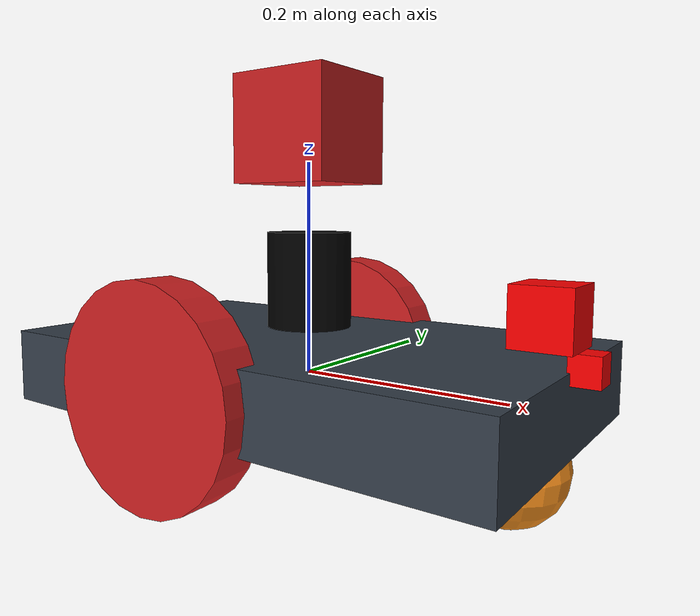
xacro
<?xml version="1.0"?>
<robot xmlns:xacro="http://www.ros.org/wiki/xacro" name="robot_xacro">
<xacro:include filename="$(find exp_assignment3)/urdf/robot.gazebo"/>

	<xacro:property name="length_wheel" value="0.04" />
	<xacro:property name="radius_wheel" value="0.1" />

	<xacro:macro name="default_inertial" params="mass">
               <inertial>
                       <mass value="${mass}" />
                       <origin rpy="0 1.5707 1.5707" xyz="0 0 0"/>
                       <inertia ixx="0.000526666666667" ixy="0" ixz="0" iyy="0.000526666666667" iyz="0" izz="0.001"/>
               </inertial>
	</xacro:macro>

    <xacro:macro name="wheel_geometry">
		<geometry>
       			<cylinder length="${length_wheel}" radius="${radius_wheel}"/>
     	</geometry>
	</xacro:macro>

  <material name="black">
    <color rgba="0.0 0.0 0.0 1.0"/>
  </material>
  <material name="blue">
    <color rgba="0.203125 0.23828125 0.28515625 1.0"/>
  </material>
  <material name="green">
    <color rgba="0.0 0.8 0.0 1.0"/>
  </material>
  <material name="grey">
    <color rgba="0.2 0.2 0.2 1.0"/>
  </material>
  <material name="orange">
    <color rgba="1.0 0.423529411765 0.0392156862745 1.0"/>
  </material>
  <material name="brown">
    <color rgba="0.870588235294 0.811764705882 0.764705882353 1.0"/>
  </material>
  <material name="red">
    <color rgba="0.80078125 0.12890625 0.1328125 1.0"/>
  </material>
  <material name="white">
    <color rgba="1.0 1.0 1.0 1.0"/>
  </material>

	  <link name="link_chassis">
    <!-- pose and inertial -->
    <pose>0 0 0.1 0 0 0</pose>
    <inertial>
      <mass value="5"/>
      <origin rpy="0 0 0" xyz="0 0 0.1"/>
      <inertia ixx="0.0395416666667" ixy="0" ixz="0" iyy="0.106208333333" iyz="0" izz="0.106208333333"/>
    </inertial>
    <!-- body -->
    <collision name="collision_chassis">
      <geometry>
        <box size="0.5 0.3 0.07"/>
      </geometry>
    </collision>
    <visual>
      <origin rpy="0 0 0" xyz="0 0 0"/>
      <geometry>
        <box size="0.5 0.3 0.07"/>
      </geometry>
      <material name="blue"/>
    </visual>
    <!-- caster front -->
    <collision name="caster_front_collision">
      <origin rpy=" 0 0 0" xyz="0.35 0 -0.05"/>
      <geometry>
        <sphere radius="0.05"/>
      </geometry>
    </collision>
    <visual name="caster_front_visual">
      <origin rpy=" 0 0 0" xyz="0.2 0 -0.05"/>
      <geometry>
        <sphere radius="0.05"/>
      </geometry>
    </visual>
  </link>

   <link name="link_right_wheel">
    <xacro:default_inertial mass="0.2"/>
    <collision name="link_right_wheel_collision">
      <origin rpy="0 1.5707 1.5707" xyz="0 0 0"/>
      <xacro:wheel_geometry />
    </collision>
    <visual name="link_right_wheel_visual">
      <origin rpy="0 1.5707 1.5707" xyz="0 0 0"/>
      <xacro:wheel_geometry />
      <material name="red"/>
    </visual>
  </link>

   <link name="link_left_wheel">
    <xacro:default_inertial mass="0.2"/>
    <collision name="link_left_wheel_collision">
      <origin rpy="0 1.5707 1.5707" xyz="0 0 0"/>
      <xacro:wheel_geometry />
    </collision>
    <visual name="link_left_wheel_visual">
      <origin rpy="0 1.5707 1.5707" xyz="0 0 0"/>
      <xacro:wheel_geometry />
      <material name="red"/>
    </visual>
  </link>

  <joint name="joint_right_wheel" type="continuous">
    <origin rpy="0 0 0" xyz="-0.05 0.15 0"/>
    <child link="link_right_wheel"/>
    <parent link="link_chassis"/>
    <axis rpy="0 0 0" xyz="0 1 0"/>
    <limit effort="10000" velocity="1000"/>
    <joint_properties damping="1.0" friction="1.0"/>
  </joint>

  <joint name="joint_left_wheel" type="continuous">
    <origin rpy="0 0 0" xyz="-0.05 -0.15 0"/>
    <child link="link_left_wheel"/>
    <parent link="link_chassis"/>
    <axis rpy="0 0 0" xyz="0 1 0"/>
    <limit effort="10000" velocity="1000"/>
    <joint_properties damping="1.0" friction="1.0"/>
  </joint>

    <link name="neck_link">
  	<inertial>
	<mass value="0.025"/>
	<origin xyz="0 0 0" rpy="0.05 0 0" />
	<inertia ixx="0.000010279" ixy="0" ixz="0" iyy="0.000010279" iyz="0" izz="0.000007225"/>
  	</inertial>
  	<collision>
  	  <origin xyz="0 0 0.08" rpy="0 0 0"/>
      <geometry>
        <cylinder radius="0.04" length="0.09"/>
      </geometry>
  	</collision>
  	<visual>
  	  <origin xyz="0 0 0.09" rpy="0 0 0"/>
      <geometry>
        <cylinder radius="0.04" length="0.09"/>
      </geometry>
      <material name="black" />
  	</visual>
  </link>

  <link name="head_link">
  	<inertial>
	<mass value="0.025"/>
	<origin xyz="0 0 0" rpy="0 0 0" />
	<inertia ixx="0.000010279" ixy="0" ixz="0" iyy="0.000010279" iyz="0" izz="0.000007225"/>
  	</inertial>
  	<collision>
  	  <origin xyz="0 0 0.18" rpy="0 0 0"/>
      <geometry>
        <box size="0.1 0.1 0.1"/>
      </geometry>
  	</collision>
  	<visual>
  	  <origin xyz="0 0 0.18" rpy="0 0 0"/>
      <geometry>
        <box size="0.1 0.1 0.1"/>
      </geometry>
      <material name="red" />
  	</visual>
  </link>

  <link name="camera_link">
	    <collision>
	      <origin xyz="0 0 0.025" rpy="0 0 0"/>
	      <geometry>
		<box size="0.05 0.05 0.05"/>
	      </geometry>
	    </collision>
	    <visual>
	      <origin xyz="0 0 0.025" rpy="0 0 0"/>
	      <geometry>
		<box size="0.05 0.05 0.05"/>
	      </geometry>
	      <material name="red">
		<color rgba="1 0 0 1"/>
	      </material>
	    </visual>
	    <inertial>
	      <mass value="1e-5" />
	      <origin xyz="0 0 0" rpy="0 0 0"/>
	      <inertia ixx="1e-6" ixy="0" ixz="0" iyy="1e-6" iyz="0" izz="1e-6" />
	    </inertial>
  </link>

  <joint name="head_joint" type="fixed">
  	<axis xyz="0 0 1"/>
  	<limit effort="1000.0" lower="-3.14" upper="3.14" velocity="0.2"/>
  	<origin rpy="0 0 0" xyz="0 0 0.05"/>
  	<parent link="neck_link"/>
  	<child link="head_link"/>
  </joint>

  <joint name="neck_joint" type="fixed">
  	<origin rpy="0 0 0" xyz="0 0 0"/>
  	<parent link="link_chassis"/>
  	<child link="neck_link"/>
  </joint>

  <joint name="camera_joint" type="fixed">
	    <axis xyz="0 1 0" />
	    <origin xyz="0.23 0 0.0" rpy="0 0 0"/>
	    <parent link="head_link"/>
	    <child link="camera_link"/>
	 </joint>

 <!-- Laser -->
   <link name="hokuyo_link">
	    <collision>
	      <origin xyz="0 0 0.00125" rpy="0 0 0"/>
	      <geometry>
		<box size="0.025 0.025 0.025"/>
	      </geometry>
	    </collision>
	    <visual>
	      <origin xyz="0 0 0.0125" rpy="0 0 0"/>
	      <geometry>
		<box size="0.025 0.025 0.025"/>
	      </geometry>
	      <material name="red">
		<color rgba="1 0 0 1"/>
	      </material>
	    </visual>
	    <inertial>
	      <mass value="1e-5" />
	      <origin xyz="0 0 0" rpy="0 0 0"/>
	      <inertia ixx="1e-6" ixy="0" ixz="0" iyy="1e-6" iyz="0" izz="1e-6" />
	    </inertial>
  </link>

  <joint name="hokuyo_joint" type="fixed">
	    <axis xyz="0 1 0" />
	    <origin xyz="0.26 0 0.025" rpy="0 0 0"/>
	    <parent link="link_chassis"/>
	    <child link="hokuyo_link"/>
	 </joint>

</robot>
